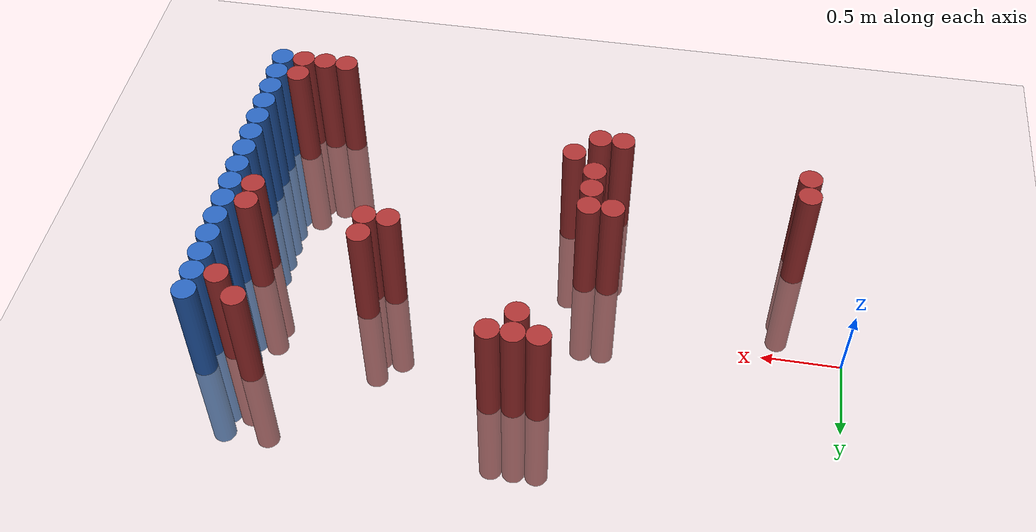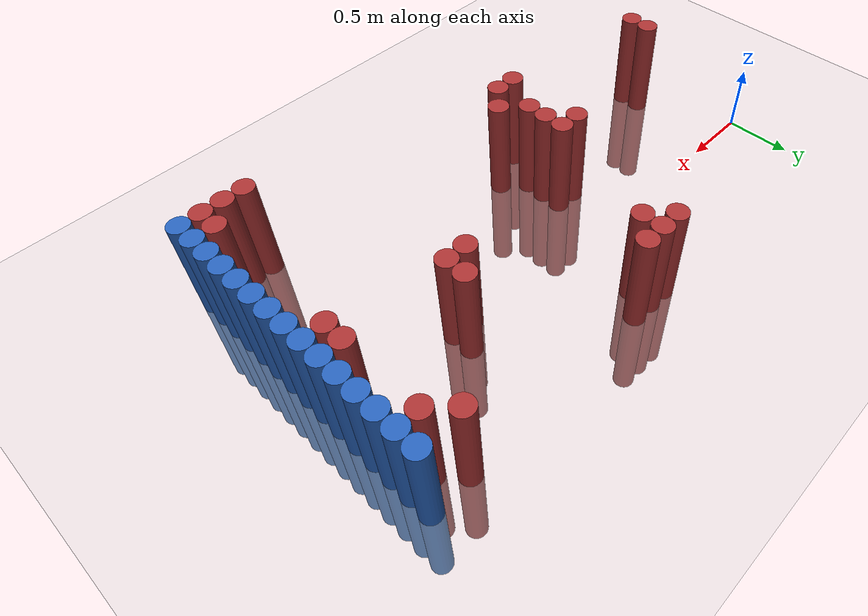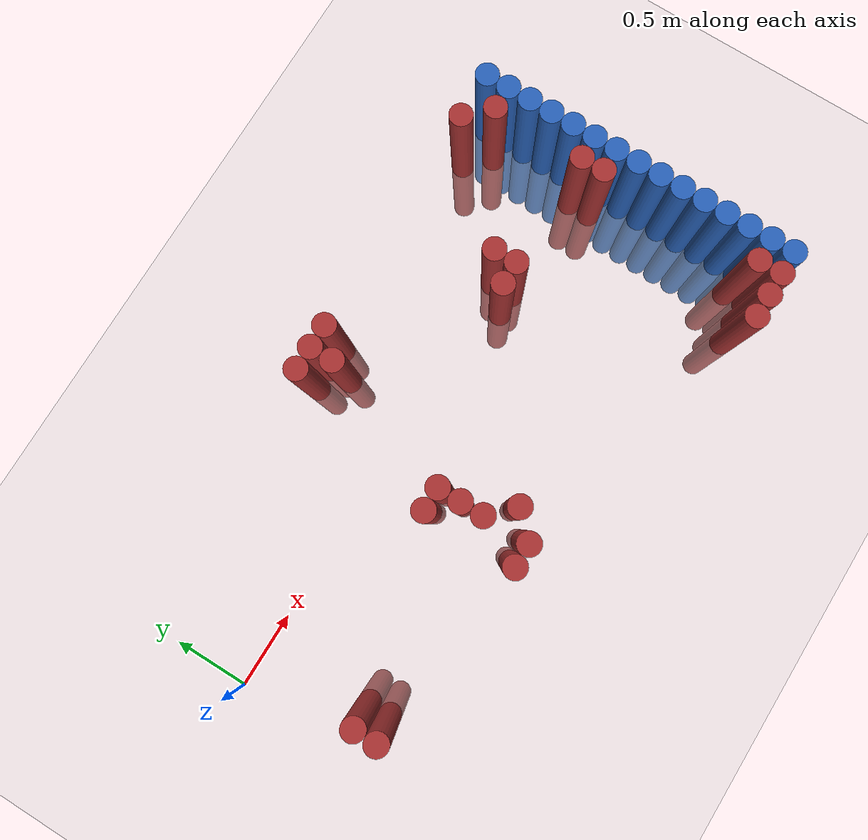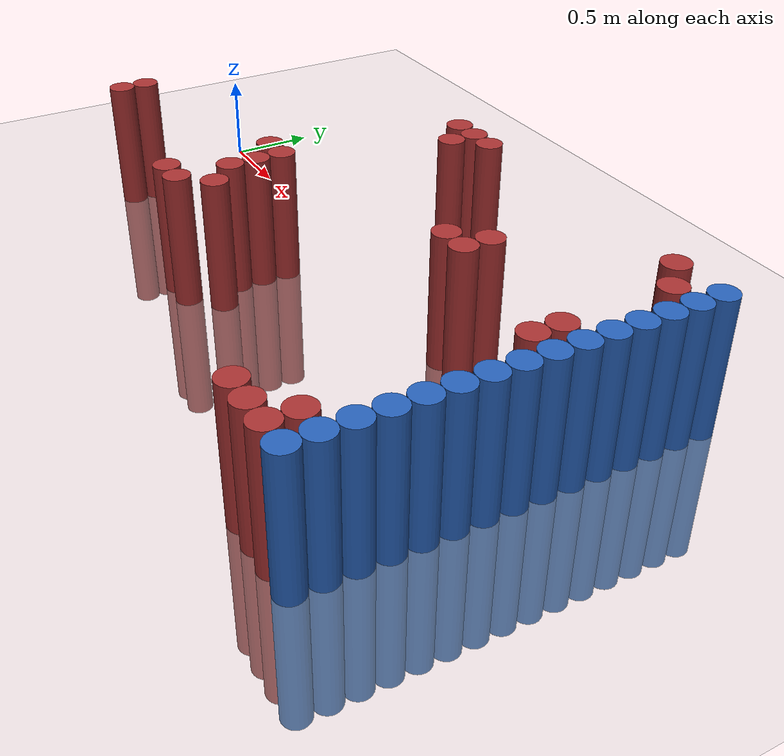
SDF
<sdf version="1.6">
 <world name="default">
  <model name="ground_plane">
   <static>1</static>
   <link name="link">
    <collision name="collision">
     <geometry><plane><normal>0 0 1</normal><size>100 100</size></plane></geometry>
     <surface><friction><ode><mu>100</mu><mu2>50</mu2></ode></friction></surface>
    </collision>
    <visual name="visual">
     <cast_shadows>0</cast_shadows>
     <geometry><plane><normal>0 0 1</normal><size>100 100</size></plane></geometry>
     <material>
      <script><uri>file://media/materials/scripts/gazebo.material</uri><name>Gazebo/Grey</name></script>
     </material>
    </visual>
   </link>
  </model>
  <model name="unit_cylinder_94">
   <static>1</static>
   <pose>3.925000 -1.475000 0.000000 0.000000 0.000000 0.000000</pose>
   <link name="link">
    <inertial>
     <mass>1</mass>
     <inertia><ixx>0.145833</ixx><ixy>0</ixy><ixz>0</ixz><iyy>0.145833</iyy><iyz>0</iyz><izz>0.125</izz></inertia>
    </inertial>
    <collision name="collision">
     <geometry><cylinder><radius>0.075000</radius><length>1.5</length></cylinder></geometry>
    </collision>
    <visual name="visual">
     <geometry><cylinder><radius>0.075000</radius><length>1.5</length></cylinder></geometry>
     <material>
      <ambient>0.152000 0.379000 0.720000 1</ambient>
      <diffuse>0.152000 0.379000 0.720000 1</diffuse>
     </material>
     <material>
      <script><name>Gazebo/Grey</name><uri>file://media/materials/scripts/gazebo.material</uri></script>
     </material>
    </visual>
   </link>
  </model>
  <model name="unit_cylinder_96">
   <static>1</static>
   <pose>3.925000 -1.325000 0.000000 0.000000 0.000000 0.000000</pose>
   <link name="link">
    <inertial>
     <mass>1</mass>
     <inertia><ixx>0.145833</ixx><ixy>0</ixy><ixz>0</ixz><iyy>0.145833</iyy><iyz>0</iyz><izz>0.125</izz></inertia>
    </inertial>
    <collision name="collision">
     <geometry><cylinder><radius>0.075000</radius><length>1.5</length></cylinder></geometry>
    </collision>
    <visual name="visual">
     <geometry><cylinder><radius>0.075000</radius><length>1.5</length></cylinder></geometry>
     <material>
      <ambient>0.152000 0.379000 0.720000 1</ambient>
      <diffuse>0.152000 0.379000 0.720000 1</diffuse>
     </material>
     <material>
      <script><name>Gazebo/Grey</name><uri>file://media/materials/scripts/gazebo.material</uri></script>
     </material>
    </visual>
   </link>
  </model>
  <model name="unit_cylinder_98">
   <static>1</static>
   <pose>3.925000 -1.175000 0.000000 0.000000 0.000000 0.000000</pose>
   <link name="link">
    <inertial>
     <mass>1</mass>
     <inertia><ixx>0.145833</ixx><ixy>0</ixy><ixz>0</ixz><iyy>0.145833</iyy><iyz>0</iyz><izz>0.125</izz></inertia>
    </inertial>
    <collision name="collision">
     <geometry><cylinder><radius>0.075000</radius><length>1.5</length></cylinder></geometry>
    </collision>
    <visual name="visual">
     <geometry><cylinder><radius>0.075000</radius><length>1.5</length></cylinder></geometry>
     <material>
      <ambient>0.152000 0.379000 0.720000 1</ambient>
      <diffuse>0.152000 0.379000 0.720000 1</diffuse>
     </material>
     <material>
      <script><name>Gazebo/Grey</name><uri>file://media/materials/scripts/gazebo.material</uri></script>
     </material>
    </visual>
   </link>
  </model>
  <model name="unit_cylinder_100">
   <static>1</static>
   <pose>3.925000 -1.025000 0.000000 0.000000 0.000000 0.000000</pose>
   <link name="link">
    <inertial>
     <mass>1</mass>
     <inertia><ixx>0.145833</ixx><ixy>0</ixy><ixz>0</ixz><iyy>0.145833</iyy><iyz>0</iyz><izz>0.125</izz></inertia>
    </inertial>
    <collision name="collision">
     <geometry><cylinder><radius>0.075000</radius><length>1.5</length></cylinder></geometry>
    </collision>
    <visual name="visual">
     <geometry><cylinder><radius>0.075000</radius><length>1.5</length></cylinder></geometry>
     <material>
      <ambient>0.152000 0.379000 0.720000 1</ambient>
      <diffuse>0.152000 0.379000 0.720000 1</diffuse>
     </material>
     <material>
      <script><name>Gazebo/Grey</name><uri>file://media/materials/scripts/gazebo.material</uri></script>
     </material>
    </visual>
   </link>
  </model>
  <model name="unit_cylinder_102">
   <static>1</static>
   <pose>3.925000 -0.875000 0.000000 0.000000 0.000000 0.000000</pose>
   <link name="link">
    <inertial>
     <mass>1</mass>
     <inertia><ixx>0.145833</ixx><ixy>0</ixy><ixz>0</ixz><iyy>0.145833</iyy><iyz>0</iyz><izz>0.125</izz></inertia>
    </inertial>
    <collision name="collision">
     <geometry><cylinder><radius>0.075000</radius><length>1.5</length></cylinder></geometry>
    </collision>
    <visual name="visual">
     <geometry><cylinder><radius>0.075000</radius><length>1.5</length></cylinder></geometry>
     <material>
      <ambient>0.152000 0.379000 0.720000 1</ambient>
      <diffuse>0.152000 0.379000 0.720000 1</diffuse>
     </material>
     <material>
      <script><name>Gazebo/Grey</name><uri>file://media/materials/scripts/gazebo.material</uri></script>
     </material>
    </visual>
   </link>
  </model>
  <model name="unit_cylinder_104">
   <static>1</static>
   <pose>3.925000 -0.725000 0.000000 0.000000 0.000000 0.000000</pose>
   <link name="link">
    <inertial>
     <mass>1</mass>
     <inertia><ixx>0.145833</ixx><ixy>0</ixy><ixz>0</ixz><iyy>0.145833</iyy><iyz>0</iyz><izz>0.125</izz></inertia>
    </inertial>
    <collision name="collision">
     <geometry><cylinder><radius>0.075000</radius><length>1.5</length></cylinder></geometry>
    </collision>
    <visual name="visual">
     <geometry><cylinder><radius>0.075000</radius><length>1.5</length></cylinder></geometry>
     <material>
      <ambient>0.152000 0.379000 0.720000 1</ambient>
      <diffuse>0.152000 0.379000 0.720000 1</diffuse>
     </material>
     <material>
      <script><name>Gazebo/Grey</name><uri>file://media/materials/scripts/gazebo.material</uri></script>
     </material>
    </visual>
   </link>
  </model>
  <model name="unit_cylinder_106">
   <static>1</static>
   <pose>3.925000 -0.575000 0.000000 0.000000 0.000000 0.000000</pose>
   <link name="link">
    <inertial>
     <mass>1</mass>
     <inertia><ixx>0.145833</ixx><ixy>0</ixy><ixz>0</ixz><iyy>0.145833</iyy><iyz>0</iyz><izz>0.125</izz></inertia>
    </inertial>
    <collision name="collision">
     <geometry><cylinder><radius>0.075000</radius><length>1.5</length></cylinder></geometry>
    </collision>
    <visual name="visual">
     <geometry><cylinder><radius>0.075000</radius><length>1.5</length></cylinder></geometry>
     <material>
      <ambient>0.152000 0.379000 0.720000 1</ambient>
      <diffuse>0.152000 0.379000 0.720000 1</diffuse>
     </material>
     <material>
      <script><name>Gazebo/Grey</name><uri>file://media/materials/scripts/gazebo.material</uri></script>
     </material>
    </visual>
   </link>
  </model>
  <model name="unit_cylinder_108">
   <static>1</static>
   <pose>3.925000 -0.425000 0.000000 0.000000 0.000000 0.000000</pose>
   <link name="link">
    <inertial>
     <mass>1</mass>
     <inertia><ixx>0.145833</ixx><ixy>0</ixy><ixz>0</ixz><iyy>0.145833</iyy><iyz>0</iyz><izz>0.125</izz></inertia>
    </inertial>
    <collision name="collision">
     <geometry><cylinder><radius>0.075000</radius><length>1.5</length></cylinder></geometry>
    </collision>
    <visual name="visual">
     <geometry><cylinder><radius>0.075000</radius><length>1.5</length></cylinder></geometry>
     <material>
      <ambient>0.152000 0.379000 0.720000 1</ambient>
      <diffuse>0.152000 0.379000 0.720000 1</diffuse>
     </material>
     <material>
      <script><name>Gazebo/Grey</name><uri>file://media/materials/scripts/gazebo.material</uri></script>
     </material>
    </visual>
   </link>
  </model>
  <model name="unit_cylinder_110">
   <static>1</static>
   <pose>3.925000 -0.275000 0.000000 0.000000 0.000000 0.000000</pose>
   <link name="link">
    <inertial>
     <mass>1</mass>
     <inertia><ixx>0.145833</ixx><ixy>0</ixy><ixz>0</ixz><iyy>0.145833</iyy><iyz>0</iyz><izz>0.125</izz></inertia>
    </inertial>
    <collision name="collision">
     <geometry><cylinder><radius>0.075000</radius><length>1.5</length></cylinder></geometry>
    </collision>
    <visual name="visual">
     <geometry><cylinder><radius>0.075000</radius><length>1.5</length></cylinder></geometry>
     <material>
      <ambient>0.152000 0.379000 0.720000 1</ambient>
      <diffuse>0.152000 0.379000 0.720000 1</diffuse>
     </material>
     <material>
      <script><name>Gazebo/Grey</name><uri>file://media/materials/scripts/gazebo.material</uri></script>
     </material>
    </visual>
   </link>
  </model>
  <model name="unit_cylinder_112">
   <static>1</static>
   <pose>3.925000 -0.125000 0.000000 0.000000 0.000000 0.000000</pose>
   <link name="link">
    <inertial>
     <mass>1</mass>
     <inertia><ixx>0.145833</ixx><ixy>0</ixy><ixz>0</ixz><iyy>0.145833</iyy><iyz>0</iyz><izz>0.125</izz></inertia>
    </inertial>
    <collision name="collision">
     <geometry><cylinder><radius>0.075000</radius><length>1.5</length></cylinder></geometry>
    </collision>
    <visual name="visual">
     <geometry><cylinder><radius>0.075000</radius><length>1.5</length></cylinder></geometry>
     <material>
      <ambient>0.152000 0.379000 0.720000 1</ambient>
      <diffuse>0.152000 0.379000 0.720000 1</diffuse>
     </material>
     <material>
      <script><name>Gazebo/Grey</name><uri>file://media/materials/scripts/gazebo.material</uri></script>
     </material>
    </visual>
   </link>
  </model>
  <model name="unit_cylinder_114">
   <static>1</static>
   <pose>3.925000 0.025000 0.000000 0.000000 0.000000 0.000000</pose>
   <link name="link">
    <inertial>
     <mass>1</mass>
     <inertia><ixx>0.145833</ixx><ixy>0</ixy><ixz>0</ixz><iyy>0.145833</iyy><iyz>0</iyz><izz>0.125</izz></inertia>
    </inertial>
    <collision name="collision">
     <geometry><cylinder><radius>0.075000</radius><length>1.5</length></cylinder></geometry>
    </collision>
    <visual name="visual">
     <geometry><cylinder><radius>0.075000</radius><length>1.5</length></cylinder></geometry>
     <material>
      <ambient>0.152000 0.379000 0.720000 1</ambient>
      <diffuse>0.152000 0.379000 0.720000 1</diffuse>
     </material>
     <material>
      <script><name>Gazebo/Grey</name><uri>file://media/materials/scripts/gazebo.material</uri></script>
     </material>
    </visual>
   </link>
  </model>
  <model name="unit_cylinder_116">
   <static>1</static>
   <pose>3.925000 0.175000 0.000000 0.000000 0.000000 0.000000</pose>
   <link name="link">
    <inertial>
     <mass>1</mass>
     <inertia><ixx>0.145833</ixx><ixy>0</ixy><ixz>0</ixz><iyy>0.145833</iyy><iyz>0</iyz><izz>0.125</izz></inertia>
    </inertial>
    <collision name="collision">
     <geometry><cylinder><radius>0.075000</radius><length>1.5</length></cylinder></geometry>
    </collision>
    <visual name="visual">
     <geometry><cylinder><radius>0.075000</radius><length>1.5</length></cylinder></geometry>
     <material>
      <ambient>0.152000 0.379000 0.720000 1</ambient>
      <diffuse>0.152000 0.379000 0.720000 1</diffuse>
     </material>
     <material>
      <script><name>Gazebo/Grey</name><uri>file://media/materials/scripts/gazebo.material</uri></script>
     </material>
    </visual>
   </link>
  </model>
  <model name="unit_cylinder_118">
   <static>1</static>
   <pose>3.925000 0.325000 0.000000 0.000000 0.000000 0.000000</pose>
   <link name="link">
    <inertial>
     <mass>1</mass>
     <inertia><ixx>0.145833</ixx><ixy>0</ixy><ixz>0</ixz><iyy>0.145833</iyy><iyz>0</iyz><izz>0.125</izz></inertia>
    </inertial>
    <collision name="collision">
     <geometry><cylinder><radius>0.075000</radius><length>1.5</length></cylinder></geometry>
    </collision>
    <visual name="visual">
     <geometry><cylinder><radius>0.075000</radius><length>1.5</length></cylinder></geometry>
     <material>
      <ambient>0.152000 0.379000 0.720000 1</ambient>
      <diffuse>0.152000 0.379000 0.720000 1</diffuse>
     </material>
     <material>
      <script><name>Gazebo/Grey</name><uri>file://media/materials/scripts/gazebo.material</uri></script>
     </material>
    </visual>
   </link>
  </model>
  <model name="unit_cylinder_120">
   <static>1</static>
   <pose>3.925000 0.475000 0.000000 0.000000 0.000000 0.000000</pose>
   <link name="link">
    <inertial>
     <mass>1</mass>
     <inertia><ixx>0.145833</ixx><ixy>0</ixy><ixz>0</ixz><iyy>0.145833</iyy><iyz>0</iyz><izz>0.125</izz></inertia>
    </inertial>
    <collision name="collision">
     <geometry><cylinder><radius>0.075000</radius><length>1.5</length></cylinder></geometry>
    </collision>
    <visual name="visual">
     <geometry><cylinder><radius>0.075000</radius><length>1.5</length></cylinder></geometry>
     <material>
      <ambient>0.152000 0.379000 0.720000 1</ambient>
      <diffuse>0.152000 0.379000 0.720000 1</diffuse>
     </material>
     <material>
      <script><name>Gazebo/Grey</name><uri>file://media/materials/scripts/gazebo.material</uri></script>
     </material>
    </visual>
   </link>
  </model>
  <model name="unit_cylinder_122">
   <static>1</static>
   <pose>3.925000 0.625000 0.000000 0.000000 0.000000 0.000000</pose>
   <link name="link">
    <inertial>
     <mass>1</mass>
     <inertia><ixx>0.145833</ixx><ixy>0</ixy><ixz>0</ixz><iyy>0.145833</iyy><iyz>0</iyz><izz>0.125</izz></inertia>
    </inertial>
    <collision name="collision">
     <geometry><cylinder><radius>0.075000</radius><length>1.5</length></cylinder></geometry>
    </collision>
    <visual name="visual">
     <geometry><cylinder><radius>0.075000</radius><length>1.5</length></cylinder></geometry>
     <material>
      <ambient>0.152000 0.379000 0.720000 1</ambient>
      <diffuse>0.152000 0.379000 0.720000 1</diffuse>
     </material>
     <material>
      <script><name>Gazebo/Grey</name><uri>file://media/materials/scripts/gazebo.material</uri></script>
     </material>
    </visual>
   </link>
  </model>
  <model name="unit_cylinder_329">
   <static>1</static>
   <pose>0.325000 -0.875000 0.000000 0.000000 0.000000 0.000000</pose>
   <link name="link">
    <inertial>
     <mass>1</mass>
     <inertia><ixx>0.145833</ixx><ixy>0</ixy><ixz>0</ixz><iyy>0.145833</iyy><iyz>0</iyz><izz>0.125</izz></inertia>
    </inertial>
    <collision name="collision">
     <geometry><cylinder><radius>0.075000</radius><length>1.5</length></cylinder></geometry>
    </collision>
    <visual name="visual">
     <geometry><cylinder><radius>0.075000</radius><length>1.5</length></cylinder></geometry>
     <material>
      <ambient>0.648000 0.192000 0.192000 1</ambient>
      <diffuse>0.648000 0.192000 0.192000 1</diffuse>
     </material>
     <material>
      <script><name>Gazebo/Grey</name><uri>file://media/materials/scripts/gazebo.material</uri></script>
     </material>
    </visual>
   </link>
  </model>
  <model name="unit_cylinder_330">
   <static>1</static>
   <pose>0.325000 -0.725000 0.000000 0.000000 0.000000 0.000000</pose>
   <link name="link">
    <inertial>
     <mass>1</mass>
     <inertia><ixx>0.145833</ixx><ixy>0</ixy><ixz>0</ixz><iyy>0.145833</iyy><iyz>0</iyz><izz>0.125</izz></inertia>
    </inertial>
    <collision name="collision">
     <geometry><cylinder><radius>0.075000</radius><length>1.5</length></cylinder></geometry>
    </collision>
    <visual name="visual">
     <geometry><cylinder><radius>0.075000</radius><length>1.5</length></cylinder></geometry>
     <material>
      <ambient>0.648000 0.192000 0.192000 1</ambient>
      <diffuse>0.648000 0.192000 0.192000 1</diffuse>
     </material>
     <material>
      <script><name>Gazebo/Grey</name><uri>file://media/materials/scripts/gazebo.material</uri></script>
     </material>
    </visual>
   </link>
  </model>
  <model name="unit_cylinder_353">
   <static>1</static>
   <pose>1.525000 -1.025000 0.000000 0.000000 0.000000 0.000000</pose>
   <link name="link">
    <inertial>
     <mass>1</mass>
     <inertia><ixx>0.145833</ixx><ixy>0</ixy><ixz>0</ixz><iyy>0.145833</iyy><iyz>0</iyz><izz>0.125</izz></inertia>
    </inertial>
    <collision name="collision">
     <geometry><cylinder><radius>0.075000</radius><length>1.5</length></cylinder></geometry>
    </collision>
    <visual name="visual">
     <geometry><cylinder><radius>0.075000</radius><length>1.5</length></cylinder></geometry>
     <material>
      <ambient>0.648000 0.192000 0.192000 1</ambient>
      <diffuse>0.648000 0.192000 0.192000 1</diffuse>
     </material>
     <material>
      <script><name>Gazebo/Grey</name><uri>file://media/materials/scripts/gazebo.material</uri></script>
     </material>
    </visual>
   </link>
  </model>
  <model name="unit_cylinder_354">
   <static>1</static>
   <pose>1.525000 -0.425000 0.000000 0.000000 0.000000 0.000000</pose>
   <link name="link">
    <inertial>
     <mass>1</mass>
     <inertia><ixx>0.145833</ixx><ixy>0</ixy><ixz>0</ixz><iyy>0.145833</iyy><iyz>0</iyz><izz>0.125</izz></inertia>
    </inertial>
    <collision name="collision">
     <geometry><cylinder><radius>0.075000</radius><length>1.5</length></cylinder></geometry>
    </collision>
    <visual name="visual">
     <geometry><cylinder><radius>0.075000</radius><length>1.5</length></cylinder></geometry>
     <material>
      <ambient>0.648000 0.192000 0.192000 1</ambient>
      <diffuse>0.648000 0.192000 0.192000 1</diffuse>
     </material>
     <material>
      <script><name>Gazebo/Grey</name><uri>file://media/materials/scripts/gazebo.material</uri></script>
     </material>
    </visual>
   </link>
  </model>
  <model name="unit_cylinder_355">
   <static>1</static>
   <pose>1.675000 -1.025000 0.000000 0.000000 0.000000 0.000000</pose>
   <link name="link">
    <inertial>
     <mass>1</mass>
     <inertia><ixx>0.145833</ixx><ixy>0</ixy><ixz>0</ixz><iyy>0.145833</iyy><iyz>0</iyz><izz>0.125</izz></inertia>
    </inertial>
    <collision name="collision">
     <geometry><cylinder><radius>0.075000</radius><length>1.5</length></cylinder></geometry>
    </collision>
    <visual name="visual">
     <geometry><cylinder><radius>0.075000</radius><length>1.5</length></cylinder></geometry>
     <material>
      <ambient>0.648000 0.192000 0.192000 1</ambient>
      <diffuse>0.648000 0.192000 0.192000 1</diffuse>
     </material>
     <material>
      <script><name>Gazebo/Grey</name><uri>file://media/materials/scripts/gazebo.material</uri></script>
     </material>
    </visual>
   </link>
  </model>
  <model name="unit_cylinder_356">
   <static>1</static>
   <pose>1.675000 -0.725000 0.000000 0.000000 0.000000 0.000000</pose>
   <link name="link">
    <inertial>
     <mass>1</mass>
     <inertia><ixx>0.145833</ixx><ixy>0</ixy><ixz>0</ixz><iyy>0.145833</iyy><iyz>0</iyz><izz>0.125</izz></inertia>
    </inertial>
    <collision name="collision">
     <geometry><cylinder><radius>0.075000</radius><length>1.5</length></cylinder></geometry>
    </collision>
    <visual name="visual">
     <geometry><cylinder><radius>0.075000</radius><length>1.5</length></cylinder></geometry>
     <material>
      <ambient>0.648000 0.192000 0.192000 1</ambient>
      <diffuse>0.648000 0.192000 0.192000 1</diffuse>
     </material>
     <material>
      <script><name>Gazebo/Grey</name><uri>file://media/materials/scripts/gazebo.material</uri></script>
     </material>
    </visual>
   </link>
  </model>
  <model name="unit_cylinder_357">
   <static>1</static>
   <pose>1.675000 -0.575000 0.000000 0.000000 0.000000 0.000000</pose>
   <link name="link">
    <inertial>
     <mass>1</mass>
     <inertia><ixx>0.145833</ixx><ixy>0</ixy><ixz>0</ixz><iyy>0.145833</iyy><iyz>0</iyz><izz>0.125</izz></inertia>
    </inertial>
    <collision name="collision">
     <geometry><cylinder><radius>0.075000</radius><length>1.5</length></cylinder></geometry>
    </collision>
    <visual name="visual">
     <geometry><cylinder><radius>0.075000</radius><length>1.5</length></cylinder></geometry>
     <material>
      <ambient>0.648000 0.192000 0.192000 1</ambient>
      <diffuse>0.648000 0.192000 0.192000 1</diffuse>
     </material>
     <material>
      <script><name>Gazebo/Grey</name><uri>file://media/materials/scripts/gazebo.material</uri></script>
     </material>
    </visual>
   </link>
  </model>
  <model name="unit_cylinder_358">
   <static>1</static>
   <pose>1.675000 -0.425000 0.000000 0.000000 0.000000 0.000000</pose>
   <link name="link">
    <inertial>
     <mass>1</mass>
     <inertia><ixx>0.145833</ixx><ixy>0</ixy><ixz>0</ixz><iyy>0.145833</iyy><iyz>0</iyz><izz>0.125</izz></inertia>
    </inertial>
    <collision name="collision">
     <geometry><cylinder><radius>0.075000</radius><length>1.5</length></cylinder></geometry>
    </collision>
    <visual name="visual">
     <geometry><cylinder><radius>0.075000</radius><length>1.5</length></cylinder></geometry>
     <material>
      <ambient>0.648000 0.192000 0.192000 1</ambient>
      <diffuse>0.648000 0.192000 0.192000 1</diffuse>
     </material>
     <material>
      <script><name>Gazebo/Grey</name><uri>file://media/materials/scripts/gazebo.material</uri></script>
     </material>
    </visual>
   </link>
  </model>
  <model name="unit_cylinder_359">
   <static>1</static>
   <pose>1.825000 -0.875000 0.000000 0.000000 0.000000 0.000000</pose>
   <link name="link">
    <inertial>
     <mass>1</mass>
     <inertia><ixx>0.145833</ixx><ixy>0</ixy><ixz>0</ixz><iyy>0.145833</iyy><iyz>0</iyz><izz>0.125</izz></inertia>
    </inertial>
    <collision name="collision">
     <geometry><cylinder><radius>0.075000</radius><length>1.5</length></cylinder></geometry>
    </collision>
    <visual name="visual">
     <geometry><cylinder><radius>0.075000</radius><length>1.5</length></cylinder></geometry>
     <material>
      <ambient>0.648000 0.192000 0.192000 1</ambient>
      <diffuse>0.648000 0.192000 0.192000 1</diffuse>
     </material>
     <material>
      <script><name>Gazebo/Grey</name><uri>file://media/materials/scripts/gazebo.material</uri></script>
     </material>
    </visual>
   </link>
  </model>
  <model name="unit_cylinder_360">
   <static>1</static>
   <pose>1.825000 0.625000 0.000000 0.000000 0.000000 0.000000</pose>
   <link name="link">
    <inertial>
     <mass>1</mass>
     <inertia><ixx>0.145833</ixx><ixy>0</ixy><ixz>0</ixz><iyy>0.145833</iyy><iyz>0</iyz><izz>0.125</izz></inertia>
    </inertial>
    <collision name="collision">
     <geometry><cylinder><radius>0.075000</radius><length>1.5</length></cylinder></geometry>
    </collision>
    <visual name="visual">
     <geometry><cylinder><radius>0.075000</radius><length>1.5</length></cylinder></geometry>
     <material>
      <ambient>0.648000 0.192000 0.192000 1</ambient>
      <diffuse>0.648000 0.192000 0.192000 1</diffuse>
     </material>
     <material>
      <script><name>Gazebo/Grey</name><uri>file://media/materials/scripts/gazebo.material</uri></script>
     </material>
    </visual>
   </link>
  </model>
  <model name="unit_cylinder_364">
   <static>1</static>
   <pose>1.975000 0.475000 0.000000 0.000000 0.000000 0.000000</pose>
   <link name="link">
    <inertial>
     <mass>1</mass>
     <inertia><ixx>0.145833</ixx><ixy>0</ixy><ixz>0</ixz><iyy>0.145833</iyy><iyz>0</iyz><izz>0.125</izz></inertia>
    </inertial>
    <collision name="collision">
     <geometry><cylinder><radius>0.075000</radius><length>1.5</length></cylinder></geometry>
    </collision>
    <visual name="visual">
     <geometry><cylinder><radius>0.075000</radius><length>1.5</length></cylinder></geometry>
     <material>
      <ambient>0.648000 0.192000 0.192000 1</ambient>
      <diffuse>0.648000 0.192000 0.192000 1</diffuse>
     </material>
     <material>
      <script><name>Gazebo/Grey</name><uri>file://media/materials/scripts/gazebo.material</uri></script>
     </material>
    </visual>
   </link>
  </model>
  <model name="unit_cylinder_365">
   <static>1</static>
   <pose>1.975000 0.625000 0.000000 0.000000 0.000000 0.000000</pose>
   <link name="link">
    <inertial>
     <mass>1</mass>
     <inertia><ixx>0.145833</ixx><ixy>0</ixy><ixz>0</ixz><iyy>0.145833</iyy><iyz>0</iyz><izz>0.125</izz></inertia>
    </inertial>
    <collision name="collision">
     <geometry><cylinder><radius>0.075000</radius><length>1.5</length></cylinder></geometry>
    </collision>
    <visual name="visual">
     <geometry><cylinder><radius>0.075000</radius><length>1.5</length></cylinder></geometry>
     <material>
      <ambient>0.648000 0.192000 0.192000 1</ambient>
      <diffuse>0.648000 0.192000 0.192000 1</diffuse>
     </material>
     <material>
      <script><name>Gazebo/Grey</name><uri>file://media/materials/scripts/gazebo.material</uri></script>
     </material>
    </visual>
   </link>
  </model>
  <model name="unit_cylinder_368">
   <static>1</static>
   <pose>2.125000 0.625000 0.000000 0.000000 0.000000 0.000000</pose>
   <link name="link">
    <inertial>
     <mass>1</mass>
     <inertia><ixx>0.145833</ixx><ixy>0</ixy><ixz>0</ixz><iyy>0.145833</iyy><iyz>0</iyz><izz>0.125</izz></inertia>
    </inertial>
    <collision name="collision">
     <geometry><cylinder><radius>0.075000</radius><length>1.5</length></cylinder></geometry>
    </collision>
    <visual name="visual">
     <geometry><cylinder><radius>0.075000</radius><length>1.5</length></cylinder></geometry>
     <material>
      <ambient>0.648000 0.192000 0.192000 1</ambient>
      <diffuse>0.648000 0.192000 0.192000 1</diffuse>
     </material>
     <material>
      <script><name>Gazebo/Grey</name><uri>file://media/materials/scripts/gazebo.material</uri></script>
     </material>
    </visual>
   </link>
  </model>
  <model name="unit_cylinder_380">
   <static>1</static>
   <pose>2.875000 -0.125000 0.000000 0.000000 0.000000 0.000000</pose>
   <link name="link">
    <inertial>
     <mass>1</mass>
     <inertia><ixx>0.145833</ixx><ixy>0</ixy><ixz>0</ixz><iyy>0.145833</iyy><iyz>0</iyz><izz>0.125</izz></inertia>
    </inertial>
    <collision name="collision">
     <geometry><cylinder><radius>0.075000</radius><length>1.5</length></cylinder></geometry>
    </collision>
    <visual name="visual">
     <geometry><cylinder><radius>0.075000</radius><length>1.5</length></cylinder></geometry>
     <material>
      <ambient>0.648000 0.192000 0.192000 1</ambient>
      <diffuse>0.648000 0.192000 0.192000 1</diffuse>
     </material>
     <material>
      <script><name>Gazebo/Grey</name><uri>file://media/materials/scripts/gazebo.material</uri></script>
     </material>
    </visual>
   </link>
  </model>
  <model name="unit_cylinder_384">
   <static>1</static>
   <pose>3.025000 -0.125000 0.000000 0.000000 0.000000 0.000000</pose>
   <link name="link">
    <inertial>
     <mass>1</mass>
     <inertia><ixx>0.145833</ixx><ixy>0</ixy><ixz>0</ixz><iyy>0.145833</iyy><iyz>0</iyz><izz>0.125</izz></inertia>
    </inertial>
    <collision name="collision">
     <geometry><cylinder><radius>0.075000</radius><length>1.5</length></cylinder></geometry>
    </collision>
    <visual name="visual">
     <geometry><cylinder><radius>0.075000</radius><length>1.5</length></cylinder></geometry>
     <material>
      <ambient>0.648000 0.192000 0.192000 1</ambient>
      <diffuse>0.648000 0.192000 0.192000 1</diffuse>
     </material>
     <material>
      <script><name>Gazebo/Grey</name><uri>file://media/materials/scripts/gazebo.material</uri></script>
     </material>
    </visual>
   </link>
  </model>
  <model name="unit_cylinder_385">
   <static>1</static>
   <pose>3.025000 0.025000 0.000000 0.000000 0.000000 0.000000</pose>
   <link name="link">
    <inertial>
     <mass>1</mass>
     <inertia><ixx>0.145833</ixx><ixy>0</ixy><ixz>0</ixz><iyy>0.145833</iyy><iyz>0</iyz><izz>0.125</izz></inertia>
    </inertial>
    <collision name="collision">
     <geometry><cylinder><radius>0.075000</radius><length>1.5</length></cylinder></geometry>
    </collision>
    <visual name="visual">
     <geometry><cylinder><radius>0.075000</radius><length>1.5</length></cylinder></geometry>
     <material>
      <ambient>0.648000 0.192000 0.192000 1</ambient>
      <diffuse>0.648000 0.192000 0.192000 1</diffuse>
     </material>
     <material>
      <script><name>Gazebo/Grey</name><uri>file://media/materials/scripts/gazebo.material</uri></script>
     </material>
    </visual>
   </link>
  </model>
  <model name="unit_cylinder_394">
   <static>1</static>
   <pose>3.475000 -1.475000 0.000000 0.000000 0.000000 0.000000</pose>
   <link name="link">
    <inertial>
     <mass>1</mass>
     <inertia><ixx>0.145833</ixx><ixy>0</ixy><ixz>0</ixz><iyy>0.145833</iyy><iyz>0</iyz><izz>0.125</izz></inertia>
    </inertial>
    <collision name="collision">
     <geometry><cylinder><radius>0.075000</radius><length>1.5</length></cylinder></geometry>
    </collision>
    <visual name="visual">
     <geometry><cylinder><radius>0.075000</radius><length>1.5</length></cylinder></geometry>
     <material>
      <ambient>0.648000 0.192000 0.192000 1</ambient>
      <diffuse>0.648000 0.192000 0.192000 1</diffuse>
     </material>
     <material>
      <script><name>Gazebo/Grey</name><uri>file://media/materials/scripts/gazebo.material</uri></script>
     </material>
    </visual>
   </link>
  </model>
  <model name="unit_cylinder_402">
   <static>1</static>
   <pose>3.625000 -1.475000 0.000000 0.000000 0.000000 0.000000</pose>
   <link name="link">
    <inertial>
     <mass>1</mass>
     <inertia><ixx>0.145833</ixx><ixy>0</ixy><ixz>0</ixz><iyy>0.145833</iyy><iyz>0</iyz><izz>0.125</izz></inertia>
    </inertial>
    <collision name="collision">
     <geometry><cylinder><radius>0.075000</radius><length>1.5</length></cylinder></geometry>
    </collision>
    <visual name="visual">
     <geometry><cylinder><radius>0.075000</radius><length>1.5</length></cylinder></geometry>
     <material>
      <ambient>0.648000 0.192000 0.192000 1</ambient>
      <diffuse>0.648000 0.192000 0.192000 1</diffuse>
     </material>
     <material>
      <script><name>Gazebo/Grey</name><uri>file://media/materials/scripts/gazebo.material</uri></script>
     </material>
    </visual>
   </link>
  </model>
  <model name="unit_cylinder_403">
   <static>1</static>
   <pose>3.625000 0.625000 0.000000 0.000000 0.000000 0.000000</pose>
   <link name="link">
    <inertial>
     <mass>1</mass>
     <inertia><ixx>0.145833</ixx><ixy>0</ixy><ixz>0</ixz><iyy>0.145833</iyy><iyz>0</iyz><izz>0.125</izz></inertia>
    </inertial>
    <collision name="collision">
     <geometry><cylinder><radius>0.075000</radius><length>1.5</length></cylinder></geometry>
    </collision>
    <visual name="visual">
     <geometry><cylinder><radius>0.075000</radius><length>1.5</length></cylinder></geometry>
     <material>
      <ambient>0.648000 0.192000 0.192000 1</ambient>
      <diffuse>0.648000 0.192000 0.192000 1</diffuse>
     </material>
     <material>
      <script><name>Gazebo/Grey</name><uri>file://media/materials/scripts/gazebo.material</uri></script>
     </material>
    </visual>
   </link>
  </model>
  <model name="unit_cylinder_410">
   <static>1</static>
   <pose>3.775000 -1.475000 0.000000 0.000000 0.000000 0.000000</pose>
   <link name="link">
    <inertial>
     <mass>1</mass>
     <inertia><ixx>0.145833</ixx><ixy>0</ixy><ixz>0</ixz><iyy>0.145833</iyy><iyz>0</iyz><izz>0.125</izz></inertia>
    </inertial>
    <collision name="collision">
     <geometry><cylinder><radius>0.075000</radius><length>1.5</length></cylinder></geometry>
    </collision>
    <visual name="visual">
     <geometry><cylinder><radius>0.075000</radius><length>1.5</length></cylinder></geometry>
     <material>
      <ambient>0.648000 0.192000 0.192000 1</ambient>
      <diffuse>0.648000 0.192000 0.192000 1</diffuse>
     </material>
     <material>
      <script><name>Gazebo/Grey</name><uri>file://media/materials/scripts/gazebo.material</uri></script>
     </material>
    </visual>
   </link>
  </model>
  <model name="unit_cylinder_411">
   <static>1</static>
   <pose>3.775000 -1.325000 0.000000 0.000000 0.000000 0.000000</pose>
   <link name="link">
    <inertial>
     <mass>1</mass>
     <inertia><ixx>0.145833</ixx><ixy>0</ixy><ixz>0</ixz><iyy>0.145833</iyy><iyz>0</iyz><izz>0.125</izz></inertia>
    </inertial>
    <collision name="collision">
     <geometry><cylinder><radius>0.075000</radius><length>1.5</length></cylinder></geometry>
    </collision>
    <visual name="visual">
     <geometry><cylinder><radius>0.075000</radius><length>1.5</length></cylinder></geometry>
     <material>
      <ambient>0.648000 0.192000 0.192000 1</ambient>
      <diffuse>0.648000 0.192000 0.192000 1</diffuse>
     </material>
     <material>
      <script><name>Gazebo/Grey</name><uri>file://media/materials/scripts/gazebo.material</uri></script>
     </material>
    </visual>
   </link>
  </model>
  <model name="unit_cylinder_412">
   <static>1</static>
   <pose>3.775000 -0.275000 0.000000 0.000000 0.000000 0.000000</pose>
   <link name="link">
    <inertial>
     <mass>1</mass>
     <inertia><ixx>0.145833</ixx><ixy>0</ixy><ixz>0</ixz><iyy>0.145833</iyy><iyz>0</iyz><izz>0.125</izz></inertia>
    </inertial>
    <collision name="collision">
     <geometry><cylinder><radius>0.075000</radius><length>1.5</length></cylinder></geometry>
    </collision>
    <visual name="visual">
     <geometry><cylinder><radius>0.075000</radius><length>1.5</length></cylinder></geometry>
     <material>
      <ambient>0.648000 0.192000 0.192000 1</ambient>
      <diffuse>0.648000 0.192000 0.192000 1</diffuse>
     </material>
     <material>
      <script><name>Gazebo/Grey</name><uri>file://media/materials/scripts/gazebo.material</uri></script>
     </material>
    </visual>
   </link>
  </model>
  <model name="unit_cylinder_413">
   <static>1</static>
   <pose>3.775000 -0.125000 0.000000 0.000000 0.000000 0.000000</pose>
   <link name="link">
    <inertial>
     <mass>1</mass>
     <inertia><ixx>0.145833</ixx><ixy>0</ixy><ixz>0</ixz><iyy>0.145833</iyy><iyz>0</iyz><izz>0.125</izz></inertia>
    </inertial>
    <collision name="collision">
     <geometry><cylinder><radius>0.075000</radius><length>1.5</length></cylinder></geometry>
    </collision>
    <visual name="visual">
     <geometry><cylinder><radius>0.075000</radius><length>1.5</length></cylinder></geometry>
     <material>
      <ambient>0.648000 0.192000 0.192000 1</ambient>
      <diffuse>0.648000 0.192000 0.192000 1</diffuse>
     </material>
     <material>
      <script><name>Gazebo/Grey</name><uri>file://media/materials/scripts/gazebo.material</uri></script>
     </material>
    </visual>
   </link>
  </model>
  <model name="unit_cylinder_414">
   <static>1</static>
   <pose>3.775000 0.475000 0.000000 0.000000 0.000000 0.000000</pose>
   <link name="link">
    <inertial>
     <mass>1</mass>
     <inertia><ixx>0.145833</ixx><ixy>0</ixy><ixz>0</ixz><iyy>0.145833</iyy><iyz>0</iyz><izz>0.125</izz></inertia>
    </inertial>
    <collision name="collision">
     <geometry><cylinder><radius>0.075000</radius><length>1.5</length></cylinder></geometry>
    </collision>
    <visual name="visual">
     <geometry><cylinder><radius>0.075000</radius><length>1.5</length></cylinder></geometry>
     <material>
      <ambient>0.648000 0.192000 0.192000 1</ambient>
      <diffuse>0.648000 0.192000 0.192000 1</diffuse>
     </material>
     <material>
      <script><name>Gazebo/Grey</name><uri>file://media/materials/scripts/gazebo.material</uri></script>
     </material>
    </visual>
   </link>
  </model>
  <model name="unit_cylinder_430">
   <static>1</static>
   <pose>3.925000 -1.475000 0.000000 0.000000 0.000000 0.000000</pose>
   <link name="link">
    <inertial>
     <mass>1</mass>
     <inertia><ixx>0.145833</ixx><ixy>0</ixy><ixz>0</ixz><iyy>0.145833</iyy><iyz>0</iyz><izz>0.125</izz></inertia>
    </inertial>
    <collision name="collision">
     <geometry><cylinder><radius>0.075000</radius><length>1.5</length></cylinder></geometry>
    </collision>
    <visual name="visual">
     <geometry><cylinder><radius>0.075000</radius><length>1.5</length></cylinder></geometry>
     <material>
      <ambient>0.152000 0.379000 0.720000 1</ambient>
      <diffuse>0.152000 0.379000 0.720000 1</diffuse>
     </material>
     <material>
      <script><name>Gazebo/Grey</name><uri>file://media/materials/scripts/gazebo.material</uri></script>
     </material>
    </visual>
   </link>
  </model>
  <model name="unit_cylinder_431">
   <static>1</static>
   <pose>3.925000 -1.325000 0.000000 0.000000 0.000000 0.000000</pose>
   <link name="link">
    <inertial>
     <mass>1</mass>
     <inertia><ixx>0.145833</ixx><ixy>0</ixy><ixz>0</ixz><iyy>0.145833</iyy><iyz>0</iyz><izz>0.125</izz></inertia>
    </inertial>
    <collision name="collision">
     <geometry><cylinder><radius>0.075000</radius><length>1.5</length></cylinder></geometry>
    </collision>
    <visual name="visual">
     <geometry><cylinder><radius>0.075000</radius><length>1.5</length></cylinder></geometry>
     <material>
      <ambient>0.152000 0.379000 0.720000 1</ambient>
      <diffuse>0.152000 0.379000 0.720000 1</diffuse>
     </material>
     <material>
      <script><name>Gazebo/Grey</name><uri>file://media/materials/scripts/gazebo.material</uri></script>
     </material>
    </visual>
   </link>
  </model>
  <model name="unit_cylinder_432">
   <static>1</static>
   <pose>3.925000 -1.175000 0.000000 0.000000 0.000000 0.000000</pose>
   <link name="link">
    <inertial>
     <mass>1</mass>
     <inertia><ixx>0.145833</ixx><ixy>0</ixy><ixz>0</ixz><iyy>0.145833</iyy><iyz>0</iyz><izz>0.125</izz></inertia>
    </inertial>
    <collision name="collision">
     <geometry><cylinder><radius>0.075000</radius><length>1.5</length></cylinder></geometry>
    </collision>
    <visual name="visual">
     <geometry><cylinder><radius>0.075000</radius><length>1.5</length></cylinder></geometry>
     <material>
      <ambient>0.152000 0.379000 0.720000 1</ambient>
      <diffuse>0.152000 0.379000 0.720000 1</diffuse>
     </material>
     <material>
      <script><name>Gazebo/Grey</name><uri>file://media/materials/scripts/gazebo.material</uri></script>
     </material>
    </visual>
   </link>
  </model>
  <model name="unit_cylinder_433">
   <static>1</static>
   <pose>3.925000 -1.025000 0.000000 0.000000 0.000000 0.000000</pose>
   <link name="link">
    <inertial>
     <mass>1</mass>
     <inertia><ixx>0.145833</ixx><ixy>0</ixy><ixz>0</ixz><iyy>0.145833</iyy><iyz>0</iyz><izz>0.125</izz></inertia>
    </inertial>
    <collision name="collision">
     <geometry><cylinder><radius>0.075000</radius><length>1.5</length></cylinder></geometry>
    </collision>
    <visual name="visual">
     <geometry><cylinder><radius>0.075000</radius><length>1.5</length></cylinder></geometry>
     <material>
      <ambient>0.152000 0.379000 0.720000 1</ambient>
      <diffuse>0.152000 0.379000 0.720000 1</diffuse>
     </material>
     <material>
      <script><name>Gazebo/Grey</name><uri>file://media/materials/scripts/gazebo.material</uri></script>
     </material>
    </visual>
   </link>
  </model>
  <model name="unit_cylinder_434">
   <static>1</static>
   <pose>3.925000 -0.875000 0.000000 0.000000 0.000000 0.000000</pose>
   <link name="link">
    <inertial>
     <mass>1</mass>
     <inertia><ixx>0.145833</ixx><ixy>0</ixy><ixz>0</ixz><iyy>0.145833</iyy><iyz>0</iyz><izz>0.125</izz></inertia>
    </inertial>
    <collision name="collision">
     <geometry><cylinder><radius>0.075000</radius><length>1.5</length></cylinder></geometry>
    </collision>
    <visual name="visual">
     <geometry><cylinder><radius>0.075000</radius><length>1.5</length></cylinder></geometry>
     <material>
      <ambient>0.152000 0.379000 0.720000 1</ambient>
      <diffuse>0.152000 0.379000 0.720000 1</diffuse>
     </material>
     <material>
      <script><name>Gazebo/Grey</name><uri>file://media/materials/scripts/gazebo.material</uri></script>
     </material>
    </visual>
   </link>
  </model>
  <model name="unit_cylinder_435">
   <static>1</static>
   <pose>3.925000 -0.725000 0.000000 0.000000 0.000000 0.000000</pose>
   <link name="link">
    <inertial>
     <mass>1</mass>
     <inertia><ixx>0.145833</ixx><ixy>0</ixy><ixz>0</ixz><iyy>0.145833</iyy><iyz>0</iyz><izz>0.125</izz></inertia>
    </inertial>
    <collision name="collision">
     <geometry><cylinder><radius>0.075000</radius><length>1.5</length></cylinder></geometry>
    </collision>
    <visual name="visual">
     <geometry><cylinder><radius>0.075000</radius><length>1.5</length></cylinder></geometry>
     <material>
      <ambient>0.152000 0.379000 0.720000 1</ambient>
      <diffuse>0.152000 0.379000 0.720000 1</diffuse>
     </material>
     <material>
      <script><name>Gazebo/Grey</name><uri>file://media/materials/scripts/gazebo.material</uri></script>
     </material>
    </visual>
   </link>
  </model>
  <model name="unit_cylinder_436">
   <static>1</static>
   <pose>3.925000 -0.575000 0.000000 0.000000 0.000000 0.000000</pose>
   <link name="link">
    <inertial>
     <mass>1</mass>
     <inertia><ixx>0.145833</ixx><ixy>0</ixy><ixz>0</ixz><iyy>0.145833</iyy><iyz>0</iyz><izz>0.125</izz></inertia>
    </inertial>
    <collision name="collision">
     <geometry><cylinder><radius>0.075000</radius><length>1.5</length></cylinder></geometry>
    </collision>
    <visual name="visual">
     <geometry><cylinder><radius>0.075000</radius><length>1.5</length></cylinder></geometry>
     <material>
      <ambient>0.152000 0.379000 0.720000 1</ambient>
      <diffuse>0.152000 0.379000 0.720000 1</diffuse>
     </material>
     <material>
      <script><name>Gazebo/Grey</name><uri>file://media/materials/scripts/gazebo.material</uri></script>
     </material>
    </visual>
   </link>
  </model>
  <model name="unit_cylinder_437">
   <static>1</static>
   <pose>3.925000 -0.425000 0.000000 0.000000 0.000000 0.000000</pose>
   <link name="link">
    <inertial>
     <mass>1</mass>
     <inertia><ixx>0.145833</ixx><ixy>0</ixy><ixz>0</ixz><iyy>0.145833</iyy><iyz>0</iyz><izz>0.125</izz></inertia>
    </inertial>
    <collision name="collision">
     <geometry><cylinder><radius>0.075000</radius><length>1.5</length></cylinder></geometry>
    </collision>
    <visual name="visual">
     <geometry><cylinder><radius>0.075000</radius><length>1.5</length></cylinder></geometry>
     <material>
      <ambient>0.152000 0.379000 0.720000 1</ambient>
      <diffuse>0.152000 0.379000 0.720000 1</diffuse>
     </material>
     <material>
      <script><name>Gazebo/Grey</name><uri>file://media/materials/scripts/gazebo.material</uri></script>
     </material>
    </visual>
   </link>
  </model>
  <model name="unit_cylinder_438">
   <static>1</static>
   <pose>3.925000 -0.275000 0.000000 0.000000 0.000000 0.000000</pose>
   <link name="link">
    <inertial>
     <mass>1</mass>
     <inertia><ixx>0.145833</ixx><ixy>0</ixy><ixz>0</ixz><iyy>0.145833</iyy><iyz>0</iyz><izz>0.125</izz></inertia>
    </inertial>
    <collision name="collision">
     <geometry><cylinder><radius>0.075000</radius><length>1.5</length></cylinder></geometry>
    </collision>
    <visual name="visual">
     <geometry><cylinder><radius>0.075000</radius><length>1.5</length></cylinder></geometry>
     <material>
      <ambient>0.152000 0.379000 0.720000 1</ambient>
      <diffuse>0.152000 0.379000 0.720000 1</diffuse>
     </material>
     <material>
      <script><name>Gazebo/Grey</name><uri>file://media/materials/scripts/gazebo.material</uri></script>
     </material>
    </visual>
   </link>
  </model>
  <model name="unit_cylinder_439">
   <static>1</static>
   <pose>3.925000 -0.125000 0.000000 0.000000 0.000000 0.000000</pose>
   <link name="link">
    <inertial>
     <mass>1</mass>
     <inertia><ixx>0.145833</ixx><ixy>0</ixy><ixz>0</ixz><iyy>0.145833</iyy><iyz>0</iyz><izz>0.125</izz></inertia>
    </inertial>
    <collision name="collision">
     <geometry><cylinder><radius>0.075000</radius><length>1.5</length></cylinder></geometry>
    </collision>
    <visual name="visual">
     <geometry><cylinder><radius>0.075000</radius><length>1.5</length></cylinder></geometry>
     <material>
      <ambient>0.152000 0.379000 0.720000 1</ambient>
      <diffuse>0.152000 0.379000 0.720000 1</diffuse>
     </material>
     <material>
      <script><name>Gazebo/Grey</name><uri>file://media/materials/scripts/gazebo.material</uri></script>
     </material>
    </visual>
   </link>
  </model>
  <model name="unit_cylinder_440">
   <static>1</static>
   <pose>3.925000 0.025000 0.000000 0.000000 0.000000 0.000000</pose>
   <link name="link">
    <inertial>
     <mass>1</mass>
     <inertia><ixx>0.145833</ixx><ixy>0</ixy><ixz>0</ixz><iyy>0.145833</iyy><iyz>0</iyz><izz>0.125</izz></inertia>
    </inertial>
    <collision name="collision">
     <geometry><cylinder><radius>0.075000</radius><length>1.5</length></cylinder></geometry>
    </collision>
    <visual name="visual">
     <geometry><cylinder><radius>0.075000</radius><length>1.5</length></cylinder></geometry>
     <material>
      <ambient>0.152000 0.379000 0.720000 1</ambient>
      <diffuse>0.152000 0.379000 0.720000 1</diffuse>
     </material>
     <material>
      <script><name>Gazebo/Grey</name><uri>file://media/materials/scripts/gazebo.material</uri></script>
     </material>
    </visual>
   </link>
  </model>
  <model name="unit_cylinder_441">
   <static>1</static>
   <pose>3.925000 0.175000 0.000000 0.000000 0.000000 0.000000</pose>
   <link name="link">
    <inertial>
     <mass>1</mass>
     <inertia><ixx>0.145833</ixx><ixy>0</ixy><ixz>0</ixz><iyy>0.145833</iyy><iyz>0</iyz><izz>0.125</izz></inertia>
    </inertial>
    <collision name="collision">
     <geometry><cylinder><radius>0.075000</radius><length>1.5</length></cylinder></geometry>
    </collision>
    <visual name="visual">
     <geometry><cylinder><radius>0.075000</radius><length>1.5</length></cylinder></geometry>
     <material>
      <ambient>0.152000 0.379000 0.720000 1</ambient>
      <diffuse>0.152000 0.379000 0.720000 1</diffuse>
     </material>
     <material>
      <script><name>Gazebo/Grey</name><uri>file://media/materials/scripts/gazebo.material</uri></script>
     </material>
    </visual>
   </link>
  </model>
  <model name="unit_cylinder_442">
   <static>1</static>
   <pose>3.925000 0.325000 0.000000 0.000000 0.000000 0.000000</pose>
   <link name="link">
    <inertial>
     <mass>1</mass>
     <inertia><ixx>0.145833</ixx><ixy>0</ixy><ixz>0</ixz><iyy>0.145833</iyy><iyz>0</iyz><izz>0.125</izz></inertia>
    </inertial>
    <collision name="collision">
     <geometry><cylinder><radius>0.075000</radius><length>1.5</length></cylinder></geometry>
    </collision>
    <visual name="visual">
     <geometry><cylinder><radius>0.075000</radius><length>1.5</length></cylinder></geometry>
     <material>
      <ambient>0.152000 0.379000 0.720000 1</ambient>
      <diffuse>0.152000 0.379000 0.720000 1</diffuse>
     </material>
     <material>
      <script><name>Gazebo/Grey</name><uri>file://media/materials/scripts/gazebo.material</uri></script>
     </material>
    </visual>
   </link>
  </model>
  <model name="unit_cylinder_443">
   <static>1</static>
   <pose>3.925000 0.475000 0.000000 0.000000 0.000000 0.000000</pose>
   <link name="link">
    <inertial>
     <mass>1</mass>
     <inertia><ixx>0.145833</ixx><ixy>0</ixy><ixz>0</ixz><iyy>0.145833</iyy><iyz>0</iyz><izz>0.125</izz></inertia>
    </inertial>
    <collision name="collision">
     <geometry><cylinder><radius>0.075000</radius><length>1.5</length></cylinder></geometry>
    </collision>
    <visual name="visual">
     <geometry><cylinder><radius>0.075000</radius><length>1.5</length></cylinder></geometry>
     <material>
      <ambient>0.152000 0.379000 0.720000 1</ambient>
      <diffuse>0.152000 0.379000 0.720000 1</diffuse>
     </material>
     <material>
      <script><name>Gazebo/Grey</name><uri>file://media/materials/scripts/gazebo.material</uri></script>
     </material>
    </visual>
   </link>
  </model>
 </world>
</sdf>
